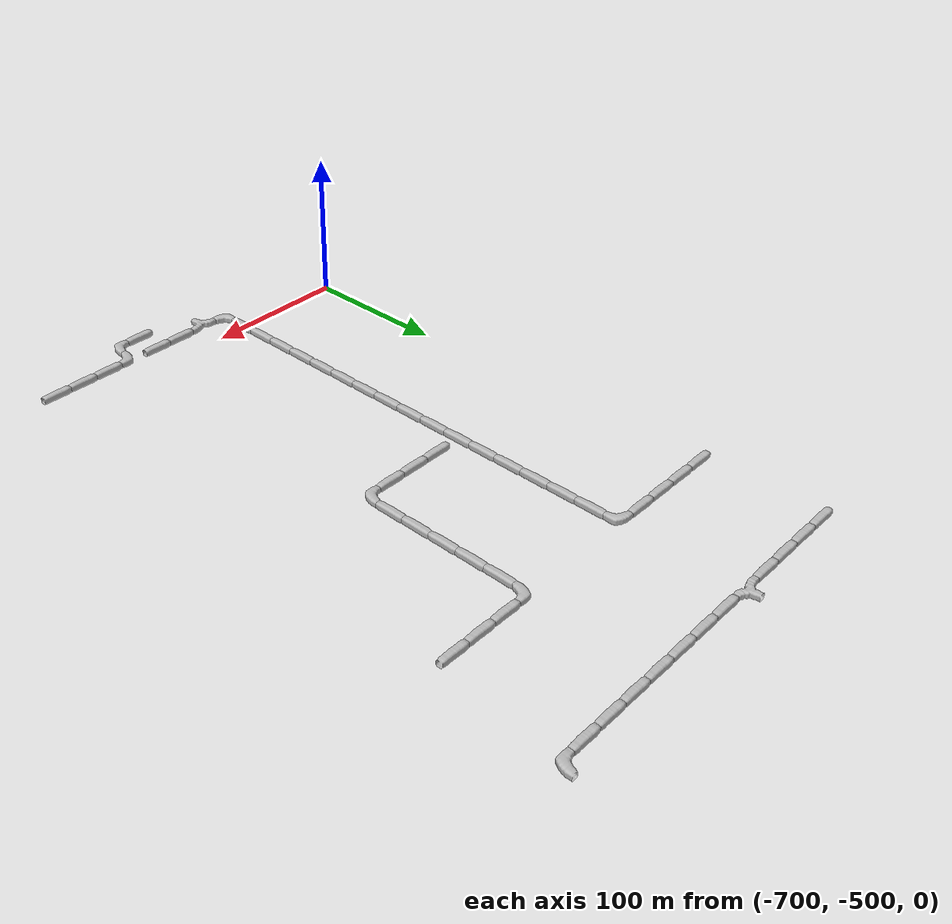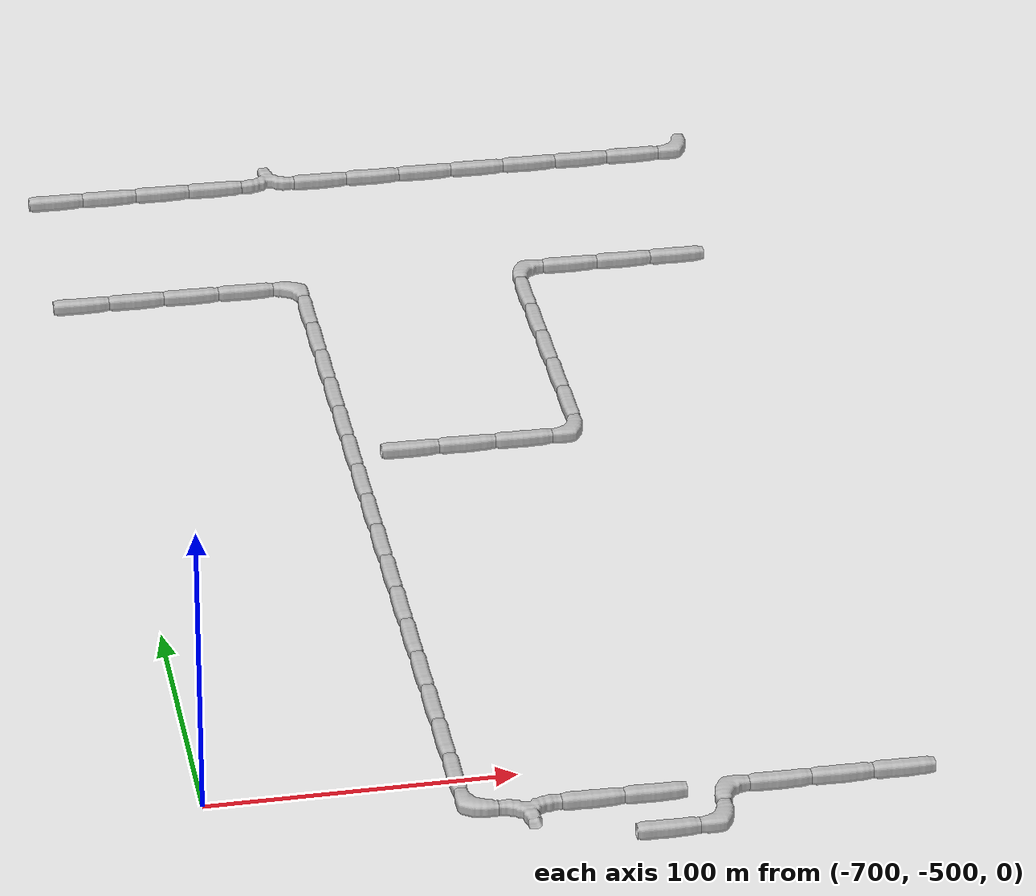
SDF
<sdf version="1.6">
 <world name="cave_32000">
  <include>
   <static>true</static>
   <name>cave_-31_-5</name>
   <pose>-620 -100 0 0 0 0.0</pose>
   <uri>model://cave_3way_20m</uri>
  </include>
  <include>
   <static>true</static>
   <name>cave_-30_-5</name>
   <pose>-600 -100 0 0 0 1.5707963267948966</pose>
   <uri>model://cave_straight_20m</uri>
  </include>
  <include>
   <static>true</static>
   <name>cave_-29_-5</name>
   <pose>-580 -100 0 0 0 1.5707963267948966</pose>
   <uri>model://cave_straight_20m</uri>
  </include>
  <include>
   <static>true</static>
   <name>cave_-28_-5</name>
   <pose>-560 -100 0 0 0 1.5707963267948966</pose>
   <uri>model://cave_straight_20m</uri>
  </include>
  <include>
   <static>true</static>
   <name>cave_-27_-5</name>
   <pose>-540 -100 0 0 0 1.5707963267948966</pose>
   <uri>model://cave_straight_20m</uri>
  </include>
  <include>
   <static>true</static>
   <name>cave_-26_-5</name>
   <pose>-520 -100 0 0 0 1.5707963267948966</pose>
   <uri>model://cave_straight_20m</uri>
  </include>
  <include>
   <static>true</static>
   <name>cave_-25_-5</name>
   <pose>-500 -100 0 0 0 1.5707963267948966</pose>
   <uri>model://cave_straight_20m</uri>
  </include>
  <include>
   <static>true</static>
   <name>cave_-24_-5</name>
   <pose>-480 -100 0 0 0 1.5707963267948966</pose>
   <uri>model://cave_straight_20m</uri>
  </include>
  <include>
   <static>true</static>
   <name>cave_-23_-5</name>
   <pose>-460 -100 0 0 0 1.5707963267948966</pose>
   <uri>model://cave_L_20m</uri>
  </include>
  <include>
   <static>true</static>
   <name>cave_-32_-5</name>
   <pose>-640 -100 0 0 0 1.5707963267948966</pose>
   <uri>model://cave_straight_20m</uri>
  </include>
  <include>
   <static>true</static>
   <name>cave_-33_-5</name>
   <pose>-660 -100 0 0 0 1.5707963267948966</pose>
   <uri>model://cave_straight_20m</uri>
  </include>
  <include>
   <static>true</static>
   <name>cave_-34_-5</name>
   <pose>-680 -100 0 0 0 1.5707963267948966</pose>
   <uri>model://cave_straight_20m</uri>
  </include>
  <include>
   <static>true</static>
   <name>cave_-35_-5</name>
   <pose>-700 -100 0 0 0 1.5707963267948966</pose>
   <uri>model://cave_straight_20m</uri>
  </include>
  <include>
   <static>true</static>
   <name>cave_-28_-27</name>
   <pose>-560 -540 0 0 0 1.5707963267948966</pose>
   <uri>model://cave_straight_20m</uri>
  </include>
  <include>
   <static>true</static>
   <name>cave_-27_-27</name>
   <pose>-540 -540 0 0 0 1.5707963267948966</pose>
   <uri>model://cave_L_20m</uri>
  </include>
  <include>
   <static>true</static>
   <name>cave_-27_-26</name>
   <pose>-540 -520 0 0 0 -1.5707963267948966</pose>
   <uri>model://cave_L_20m</uri>
  </include>
  <include>
   <static>true</static>
   <name>cave_-26_-26</name>
   <pose>-520 -520 0 0 0 1.5707963267948966</pose>
   <uri>model://cave_straight_20m</uri>
  </include>
  <include>
   <static>true</static>
   <name>cave_-25_-26</name>
   <pose>-500 -520 0 0 0 1.5707963267948966</pose>
   <uri>model://cave_straight_20m</uri>
  </include>
  <include>
   <static>true</static>
   <name>cave_-24_-26</name>
   <pose>-480 -520 0 0 0 1.5707963267948966</pose>
   <uri>model://cave_straight_20m</uri>
  </include>
  <include>
   <static>true</static>
   <name>cave_-24_-9</name>
   <pose>-480 -180 0 0 0 1.5707963267948966</pose>
   <uri>model://cave_straight_20m</uri>
  </include>
  <include>
   <static>true</static>
   <name>cave_-25_-9</name>
   <pose>-500 -180 0 0 0 1.5707963267948966</pose>
   <uri>model://cave_straight_20m</uri>
  </include>
  <include>
   <static>true</static>
   <name>cave_-26_-9</name>
   <pose>-520 -180 0 0 0 1.5707963267948966</pose>
   <uri>model://cave_straight_20m</uri>
  </include>
  <include>
   <static>true</static>
   <name>cave_-27_-9</name>
   <pose>-540 -180 0 0 0 -1.5707963267948966</pose>
   <uri>model://cave_L_20m</uri>
  </include>
  <include>
   <static>true</static>
   <name>cave_-27_-10</name>
   <pose>-540 -200 0 0 0 0.0</pose>
   <uri>model://cave_straight_20m</uri>
  </include>
  <include>
   <static>true</static>
   <name>cave_-27_-11</name>
   <pose>-540 -220 0 0 0 0.0</pose>
   <uri>model://cave_straight_20m</uri>
  </include>
  <include>
   <static>true</static>
   <name>cave_-27_-12</name>
   <pose>-540 -240 0 0 0 0.0</pose>
   <uri>model://cave_straight_20m</uri>
  </include>
  <include>
   <static>true</static>
   <name>cave_-27_-13</name>
   <pose>-540 -260 0 0 0 0.0</pose>
   <uri>model://cave_straight_20m</uri>
  </include>
  <include>
   <static>true</static>
   <name>cave_-27_-14</name>
   <pose>-540 -280 0 0 0 0.0</pose>
   <uri>model://cave_straight_20m</uri>
  </include>
  <include>
   <static>true</static>
   <name>cave_-27_-15</name>
   <pose>-540 -300 0 0 0 1.5707963267948966</pose>
   <uri>model://cave_L_20m</uri>
  </include>
  <include>
   <static>true</static>
   <name>cave_-28_-15</name>
   <pose>-560 -300 0 0 0 1.5707963267948966</pose>
   <uri>model://cave_straight_20m</uri>
  </include>
  <include>
   <static>true</static>
   <name>cave_-29_-15</name>
   <pose>-580 -300 0 0 0 1.5707963267948966</pose>
   <uri>model://cave_straight_20m</uri>
  </include>
  <include>
   <static>true</static>
   <name>cave_-30_-15</name>
   <pose>-600 -300 0 0 0 1.5707963267948966</pose>
   <uri>model://cave_straight_20m</uri>
  </include>
  <include>
   <static>true</static>
   <name>cave_-30_-26</name>
   <pose>-600 -520 0 0 0 3.141592653589793</pose>
   <uri>model://cave_3way_20m</uri>
  </include>
  <include>
   <static>true</static>
   <name>cave_-29_-26</name>
   <pose>-580 -520 0 0 0 1.5707963267948966</pose>
   <uri>model://cave_straight_20m</uri>
  </include>
  <include>
   <static>true</static>
   <name>cave_-28_-26</name>
   <pose>-560 -520 0 0 0 1.5707963267948966</pose>
   <uri>model://cave_straight_20m</uri>
  </include>
  <include>
   <static>true</static>
   <name>cave_-31_-26</name>
   <pose>-620 -520 0 0 0 0.0</pose>
   <uri>model://cave_L_20m</uri>
  </include>
  <include>
   <static>true</static>
   <name>cave_-31_-25</name>
   <pose>-620 -500 0 0 0 0.0</pose>
   <uri>model://cave_straight_20m</uri>
  </include>
  <include>
   <static>true</static>
   <name>cave_-31_-24</name>
   <pose>-620 -480 0 0 0 0.0</pose>
   <uri>model://cave_straight_20m</uri>
  </include>
  <include>
   <static>true</static>
   <name>cave_-31_-23</name>
   <pose>-620 -460 0 0 0 0.0</pose>
   <uri>model://cave_straight_20m</uri>
  </include>
  <include>
   <static>true</static>
   <name>cave_-31_-22</name>
   <pose>-620 -440 0 0 0 0.0</pose>
   <uri>model://cave_straight_20m</uri>
  </include>
  <include>
   <static>true</static>
   <name>cave_-31_-21</name>
   <pose>-620 -420 0 0 0 0.0</pose>
   <uri>model://cave_straight_20m</uri>
  </include>
  <include>
   <static>true</static>
   <name>cave_-31_-20</name>
   <pose>-620 -400 0 0 0 0.0</pose>
   <uri>model://cave_straight_20m</uri>
  </include>
  <include>
   <static>true</static>
   <name>cave_-31_-19</name>
   <pose>-620 -380 0 0 0 0.0</pose>
   <uri>model://cave_straight_20m</uri>
  </include>
  <include>
   <static>true</static>
   <name>cave_-31_-18</name>
   <pose>-620 -360 0 0 0 0.0</pose>
   <uri>model://cave_straight_20m</uri>
  </include>
  <include>
   <static>true</static>
   <name>cave_-31_-17</name>
   <pose>-620 -340 0 0 0 0.0</pose>
   <uri>model://cave_straight_20m</uri>
  </include>
  <include>
   <static>true</static>
   <name>cave_-31_-16</name>
   <pose>-620 -320 0 0 0 0.0</pose>
   <uri>model://cave_straight_20m</uri>
  </include>
  <include>
   <static>true</static>
   <name>cave_-31_-15</name>
   <pose>-620 -300 0 0 0 0.0</pose>
   <uri>model://cave_straight_20m</uri>
  </include>
  <include>
   <static>true</static>
   <name>cave_-31_-14</name>
   <pose>-620 -280 0 0 0 0.0</pose>
   <uri>model://cave_straight_20m</uri>
  </include>
  <include>
   <static>true</static>
   <name>cave_-31_-13</name>
   <pose>-620 -260 0 0 0 0.0</pose>
   <uri>model://cave_straight_20m</uri>
  </include>
  <include>
   <static>true</static>
   <name>cave_-31_-12</name>
   <pose>-620 -240 0 0 0 0.0</pose>
   <uri>model://cave_straight_20m</uri>
  </include>
  <include>
   <static>true</static>
   <name>cave_-31_-11</name>
   <pose>-620 -220 0 0 0 0.0</pose>
   <uri>model://cave_straight_20m</uri>
  </include>
  <include>
   <static>true</static>
   <name>cave_-31_-10</name>
   <pose>-620 -200 0 0 0 0.0</pose>
   <uri>model://cave_straight_20m</uri>
  </include>
  <include>
   <static>true</static>
   <name>cave_-31_-9</name>
   <pose>-620 -180 0 0 0 3.141592653589793</pose>
   <uri>model://cave_L_20m</uri>
  </include>
  <include>
   <static>true</static>
   <name>cave_-32_-9</name>
   <pose>-640 -180 0 0 0 1.5707963267948966</pose>
   <uri>model://cave_straight_20m</uri>
  </include>
  <include>
   <static>true</static>
   <name>cave_-33_-9</name>
   <pose>-660 -180 0 0 0 1.5707963267948966</pose>
   <uri>model://cave_straight_20m</uri>
  </include>
  <include>
   <static>true</static>
   <name>cave_-34_-9</name>
   <pose>-680 -180 0 0 0 1.5707963267948966</pose>
   <uri>model://cave_straight_20m</uri>
  </include>
  <include>
   <static>true</static>
   <name>cave_-35_-9</name>
   <pose>-700 -180 0 0 0 1.5707963267948966</pose>
   <uri>model://cave_straight_20m</uri>
  </include>
 </world>
</sdf>
